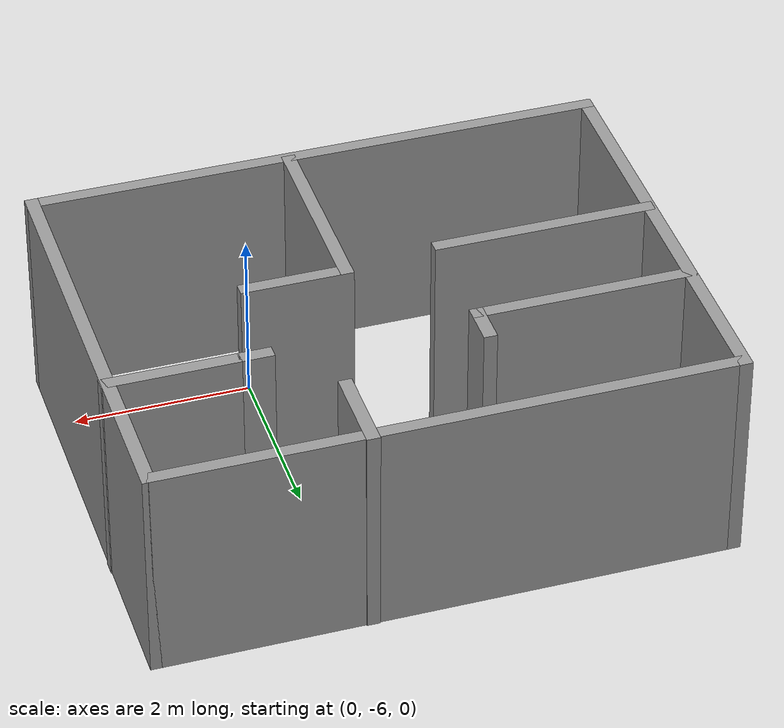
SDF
<?xml version='1.0'?>
<sdf version='1.7'>
  <model name='new_room'>
    <pose>-0.999163 -3.4207 0 0 -0 0</pose>
    <link name='Wall_12'>
      <collision name='Wall_12_Collision'>
        <geometry>
          <box>
            <size>6.5 0.15 2.5</size>
          </box>
        </geometry>
        <pose>0 0 1.25 0 -0 0</pose>
      </collision>
      <visual name='Wall_12_Visual'>
        <pose>0 0 1.25 0 -0 0</pose>
        <geometry>
          <box>
            <size>6.5 0.15 2.5</size>
          </box>
        </geometry>
        <material>
          <script>
            <uri>file://media/materials/scripts/gazebo.material</uri>
            <name>Gazebo/Grey</name>
          </script>
          <ambient>1 1 1 1</ambient>
        </material>
        <meta>
          <layer>0</layer>
        </meta>
      </visual>
      <pose>-0.005612 1.5043 0 0 -0 0</pose>
    </link>
    <link name='Wall_13'>
      <collision name='Wall_13_Collision'>
        <geometry>
          <box>
            <size>5 0.15 2.5</size>
          </box>
        </geometry>
        <pose>0 0 1.25 0 -0 0</pose>
      </collision>
      <visual name='Wall_13_Visual'>
        <pose>0 0 1.25 0 -0 0</pose>
        <geometry>
          <box>
            <size>5 0.15 2.5</size>
          </box>
        </geometry>
        <material>
          <script>
            <uri>file://media/materials/scripts/gazebo.material</uri>
            <name>Gazebo/Grey</name>
          </script>
          <ambient>1 1 1 1</ambient>
        </material>
        <meta>
          <layer>0</layer>
        </meta>
      </visual>
      <pose>3.16939 -0.9207 0 0 -0 -1.5708</pose>
    </link>
    <link name='Wall_14'>
      <collision name='Wall_14_Collision'>
        <geometry>
          <box>
            <size>6.5 0.15 2.5</size>
          </box>
        </geometry>
        <pose>0 0 1.25 0 -0 0</pose>
      </collision>
      <visual name='Wall_14_Visual'>
        <pose>0 0 1.25 0 -0 0</pose>
        <geometry>
          <box>
            <size>6.5 0.15 2.5</size>
          </box>
        </geometry>
        <material>
          <script>
            <uri>file://media/materials/scripts/gazebo.material</uri>
            <name>Gazebo/Grey</name>
          </script>
          <ambient>1 1 1 1</ambient>
        </material>
        <meta>
          <layer>0</layer>
        </meta>
      </visual>
      <pose>-0.005612 -3.3457 0 0 -0 3.14159</pose>
    </link>
    <link name='Wall_15'>
      <collision name='Wall_15_Collision'>
        <geometry>
          <box>
            <size>5 0.15 2.5</size>
          </box>
        </geometry>
        <pose>0 0 1.25 0 -0 0</pose>
      </collision>
      <visual name='Wall_15_Visual'>
        <pose>0 0 1.25 0 -0 0</pose>
        <geometry>
          <box>
            <size>5 0.15 2.5</size>
          </box>
        </geometry>
        <material>
          <script>
            <uri>file://media/materials/scripts/gazebo.material</uri>
            <name>Gazebo/Grey</name>
          </script>
          <ambient>1 1 1 1</ambient>
        </material>
        <meta>
          <layer>0</layer>
        </meta>
      </visual>
      <pose>-3.18061 -0.9207 0 0 -0 1.5708</pose>
    </link>
    <link name='Wall_17'>
      <collision name='Wall_17_Collision'>
        <geometry>
          <box>
            <size>2.5 0.15 2.5</size>
          </box>
        </geometry>
        <pose>0 0 1.25 0 -0 0</pose>
      </collision>
      <visual name='Wall_17_Visual'>
        <pose>0 0 1.25 0 -0 0</pose>
        <geometry>
          <box>
            <size>2.5 0.15 2.5</size>
          </box>
        </geometry>
        <material>
          <script>
            <uri>file://media/materials/scripts/gazebo.material</uri>
            <name>Gazebo/Grey</name>
          </script>
          <ambient>1 1 1 1</ambient>
        </material>
        <meta>
          <layer>0</layer>
        </meta>
      </visual>
      <pose>-1.99239 -0.069475 0 0 -0 0</pose>
    </link>
    <link name='Wall_18'>
      <collision name='Wall_18_Collision'>
        <geometry>
          <box>
            <size>0.5 0.15 2.5</size>
          </box>
        </geometry>
        <pose>0 0 1.25 0 -0 0</pose>
      </collision>
      <visual name='Wall_18_Visual'>
        <pose>0 0 1.25 0 -0 0</pose>
        <geometry>
          <box>
            <size>0.5 0.15 2.5</size>
          </box>
        </geometry>
        <material>
          <script>
            <uri>file://media/materials/scripts/gazebo.material</uri>
            <name>Gazebo/Grey</name>
          </script>
          <ambient>1 1 1 1</ambient>
        </material>
        <meta>
          <layer>0</layer>
        </meta>
      </visual>
      <pose>-0.817387 0.105525 0 0 -0 1.5708</pose>
    </link>
    <link name='Wall_20'>
      <collision name='Wall_20_Collision'>
        <geometry>
          <box>
            <size>1 0.15 2.5</size>
          </box>
        </geometry>
        <pose>0 0 1.25 0 -0 0</pose>
      </collision>
      <visual name='Wall_20_Visual'>
        <pose>0 0 1.25 0 -0 0</pose>
        <geometry>
          <box>
            <size>1 0.15 2.5</size>
          </box>
        </geometry>
        <material>
          <script>
            <uri>file://media/materials/scripts/gazebo.material</uri>
            <name>Gazebo/Grey</name>
          </script>
          <ambient>1 1 1 1</ambient>
        </material>
        <meta>
          <layer>0</layer>
        </meta>
      </visual>
      <pose>0.839788 1.09252 0 0 -0 -1.5708</pose>
    </link>
    <link name='Wall_22'>
      <collision name='Wall_22_Collision'>
        <geometry>
          <box>
            <size>1.5 0.15 2.5</size>
          </box>
        </geometry>
        <pose>0 0 1.25 0 -0 0</pose>
      </collision>
      <visual name='Wall_22_Visual'>
        <pose>0 0 1.25 0 -0 0</pose>
        <geometry>
          <box>
            <size>1.5 0.15 2.5</size>
          </box>
        </geometry>
        <material>
          <script>
            <uri>file://media/materials/scripts/gazebo.material</uri>
            <name>Gazebo/Grey</name>
          </script>
          <ambient>1 1 1 1</ambient>
        </material>
        <meta>
          <layer>0</layer>
        </meta>
      </visual>
      <pose>2.50561 -0.0827 0 0 -0 3.14159</pose>
    </link>
    <link name='Wall_23'>
      <collision name='Wall_23_Collision'>
        <geometry>
          <box>
            <size>0.5 0.15 2.5</size>
          </box>
        </geometry>
        <pose>0 0 1.25 0 -0 0</pose>
      </collision>
      <visual name='Wall_23_Visual'>
        <pose>0 0 1.25 0 -0 0</pose>
        <geometry>
          <box>
            <size>0.5 0.15 2.5</size>
          </box>
        </geometry>
        <material>
          <script>
            <uri>file://media/materials/scripts/gazebo.material</uri>
            <name>Gazebo/Grey</name>
          </script>
          <ambient>1 1 1 1</ambient>
        </material>
        <meta>
          <layer>0</layer>
        </meta>
      </visual>
      <pose>1.65561 -0.0827 0 0 -0 3.14159</pose>
    </link>
    <link name='Wall_25'>
      <collision name='Wall_25_Collision'>
        <geometry>
          <box>
            <size>2.5 0.15 2.5</size>
          </box>
        </geometry>
        <pose>0 0 1.25 0 -0 0</pose>
      </collision>
      <visual name='Wall_25_Visual'>
        <pose>0 0 1.25 0 -0 0</pose>
        <geometry>
          <box>
            <size>2.5 0.15 2.5</size>
          </box>
        </geometry>
        <material>
          <script>
            <uri>file://media/materials/scripts/gazebo.material</uri>
            <name>Gazebo/Grey</name>
          </script>
          <ambient>1 1 1 1</ambient>
        </material>
        <meta>
          <layer>0</layer>
        </meta>
      </visual>
      <pose>-1.97916 -1.31262 0 0 -0 0</pose>
    </link>
    <link name='Wall_30'>
      <collision name='Wall_30_Collision'>
        <geometry>
          <box>
            <size>2.25 0.15 2.5</size>
          </box>
        </geometry>
        <pose>0 0 1.25 0 -0 0</pose>
      </collision>
      <visual name='Wall_30_Visual'>
        <pose>0 0 1.25 0 -0 0</pose>
        <geometry>
          <box>
            <size>2.25 0.15 2.5</size>
          </box>
        </geometry>
        <material>
          <script>
            <uri>file://media/materials/scripts/gazebo.material</uri>
            <name>Gazebo/Grey</name>
          </script>
          <ambient>1 1 1 1</ambient>
        </material>
        <meta>
          <layer>0</layer>
        </meta>
      </visual>
      <pose>0.284338 -2.24638 0 0 -0 1.5708</pose>
    </link>
    <link name='Wall_31'>
      <collision name='Wall_31_Collision'>
        <geometry>
          <box>
            <size>1.25 0.15 2.5</size>
          </box>
        </geometry>
        <pose>0 0 1.25 0 -0 0</pose>
      </collision>
      <visual name='Wall_31_Visual'>
        <pose>0 0 1.25 0 -0 0</pose>
        <geometry>
          <box>
            <size>1.25 0.15 2.5</size>
          </box>
        </geometry>
        <material>
          <script>
            <uri>file://media/materials/scripts/gazebo.material</uri>
            <name>Gazebo/Grey</name>
          </script>
          <ambient>1 1 1 1</ambient>
        </material>
        <meta>
          <layer>0</layer>
        </meta>
      </visual>
      <pose>0.834338 -1.19637 0 0 -0 0</pose>
    </link>
    <static>1</static>
  </model>
</sdf>
